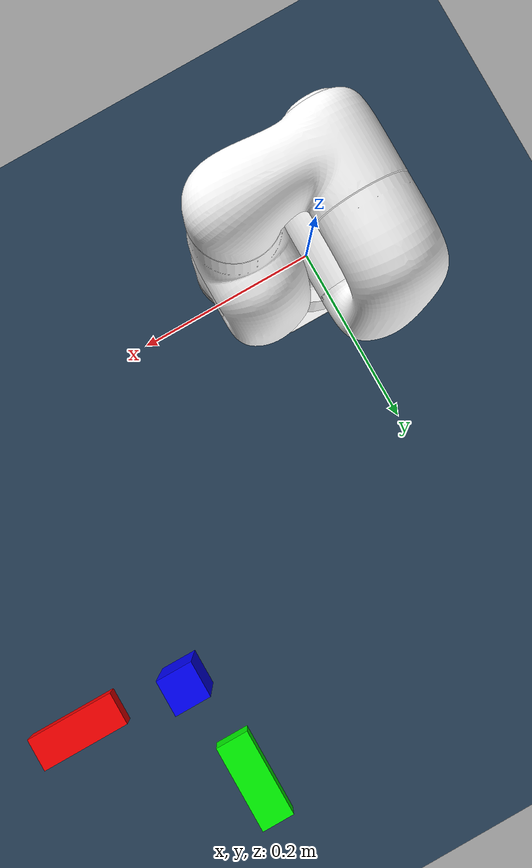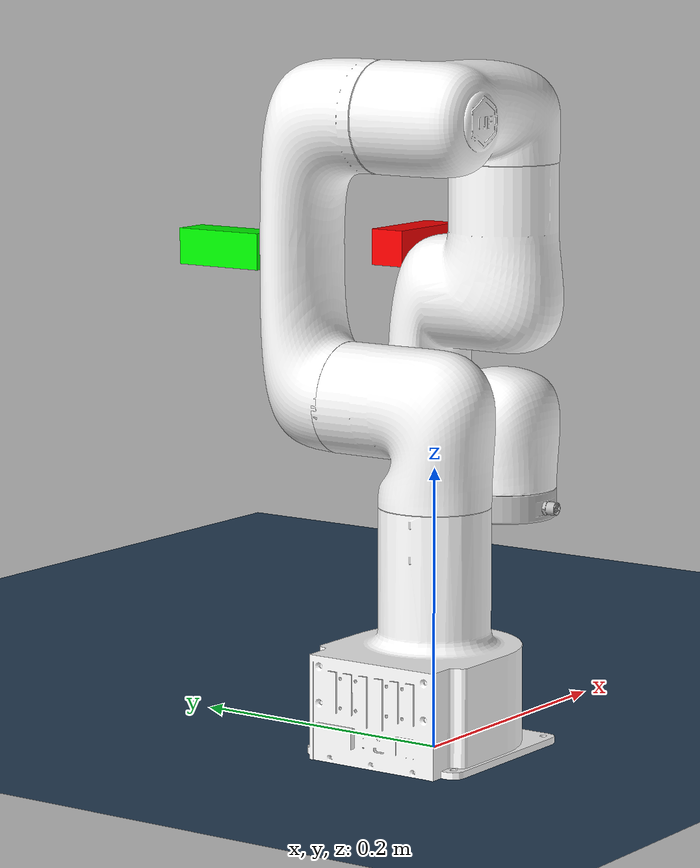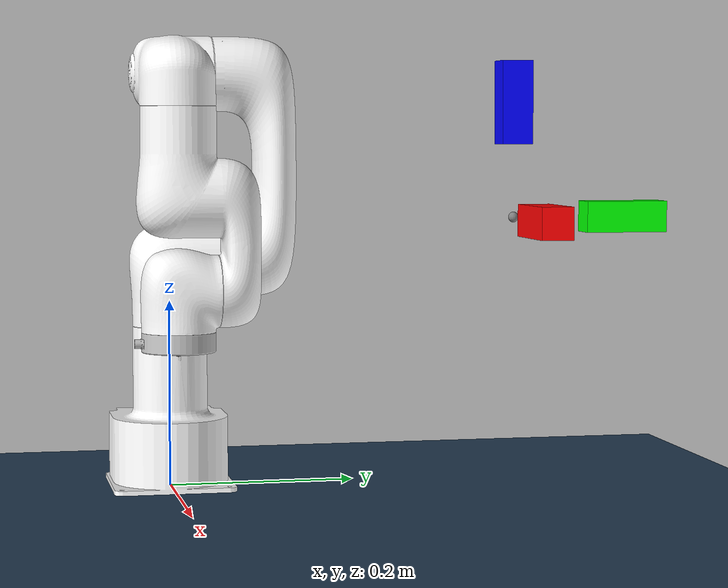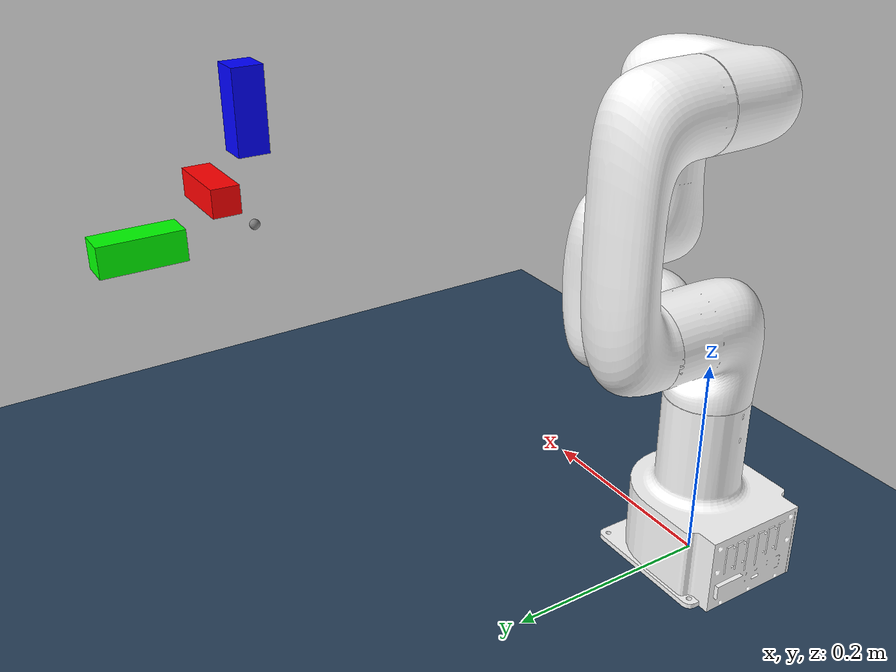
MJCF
<mujoco model="ufactory_lite6">
  <compiler angle="radian" meshdir="../mujoco_menagerie/ufactory_lite6/assets" autolimits="true"/>

  <option integrator="implicitfast"/>

  <default>
    <default class="lite6">
      <geom type="mesh"/>
      <joint axis="0 0 1" damping="1" armature="0.1"/>
      <general gaintype="fixed" biastype="affine" gainprm="2000" biasprm="0 -2000 -200"/>
      <default class="size1">
        <general forcerange="-50 50"/>
      </default>
      <default class="size2">
        <general forcerange="-32 32"/>
      </default>
      <default class="size3">
        <general forcerange="-20 20"/>
      </default>
      <default class="visual">
        <geom contype="0" conaffinity="0" group="2" material="white"/>
        <default class="target">
          <geom type="box" size=".015"/>
        </default>
      </default>
      <default class="collision">
        <geom group="3" mass="0" density="0"/>
      </default>
      <!-- This line causes sites to be in group 4 by default, making them unseen when site frame and label visualisations are turned on -->
    </default>
  </default>

  <asset>
    <material name="white" rgba="1 1 1 1"/>
    <material name="silver" rgba=".753 .753 .753 1"/>

    <mesh file="visual/link_base.stl"/>
    <mesh file="visual/link1.stl"/>
    <mesh file="visual/link2.stl"/>
    <mesh file="visual/link3.stl"/>
    <mesh file="visual/link4.stl"/>
    <mesh file="visual/link5.stl"/>
    <mesh file="visual/link6.stl"/>
    <mesh name="link_base_c" file="collision/link_base.stl"/>
    <mesh name="link1_c" file="collision/link1.stl"/>
    <mesh name="link2_c" file="collision/link2.stl"/>
    <mesh name="link3_c" file="collision/link3.stl"/>
    <mesh name="link4_c" file="collision/link4.stl"/>
    <mesh name="link5_c" file="collision/link5.stl"/>
    <mesh name="link6_c" file="collision/link6.stl"/>
  </asset>

  <visual>
    <headlight diffuse="0.6 0.6 0.6" ambient="0.3 0.3 0.3" specular="0 0 0"/>
    <rgba haze="0.15 0.25 0.35 1"/>
    <global azimuth="120" elevation="-20"/>
  </visual>

  <asset>
    <texture type="skybox" builtin="gradient" rgb1="0.3 0.5 0.7" rgb2="0 0 0" width="512" height="3072"/>
    <texture type="2d" name="groundplane" builtin="checker" mark="edge" rgb1="0.2 0.3 0.4" rgb2="0.1 0.2 0.3"
      markrgb="0.8 0.8 0.8" width="300" height="300"/>
    <material name="groundplane" texture="groundplane" texuniform="true" texrepeat="5 5" reflectance="0.2"/>
  </asset>

  <worldbody>
    <!-- Scene objects for visualisation -->
    <light pos="0 0 1.5" dir="0 0 -1" directional="true"/>
    <geom name="floor" size="0 0 0.05" type="plane" material="groundplane"/>

    <body name="link_base" childclass="lite6">
      <inertial pos="-0.00829545 3.26357e-05 0.0631195" mass="1.65394" diaginertia="0 0 0"/>
      <geom class="visual" mesh="link_base"/>
      <geom class="collision" mesh="link_base_c"/>
      <body name="link1" pos="0 0 0.2435">
        <inertial pos="-0.00036 0.04195 -0.0025" quat="0.608059 0.792349 -0.0438707 0.0228718" mass="1.411"
          diaginertia="0.00145276 0.00135275 0.000853355"/>
        <joint name="joint1" range="-6.28319 6.28319"/>
        <geom class="visual" mesh="link1"/>
        <geom class="collision" mesh="link1_c"/>
        <body name="link2" quat="-1 1 1 1">
          <inertial pos="0.179 0 0.0584" quat="0.417561 0.571619 0.569585 0.417693" mass="1.34"
            diaginertia="0.00560971 0.0052152 0.00122018"/>
          <joint name="joint2" range="-2.61799 2.61799"/>
          <geom class="visual" mesh="link2"/>
          <geom class="collision" mesh="link2_c"/>
          <body name="link3" pos="0.2002 0 0" quat="-2.59734e-06 -0.707105 -0.707108 -2.59735e-06">
            <inertial pos="0.072 -0.0357 -0.001" quat="0.128259 0.662963 -0.167256 0.71837" mass="0.953"
              diaginertia="0.0018521 0.00175546 0.000703807"/>
            <joint name="joint3" range="-0.061087 5.23599"/>
            <geom class="visual" mesh="link3"/>
            <geom class="collision" mesh="link3_c"/>
            <body name="link4" pos="0.087 -0.22761 0" quat="0.707105 0.707108 0 0">
              <inertial pos="-0.002 -0.0285 -0.0813" quat="0.975248 0.22109 0.00203498 -0.00262178" mass="1.284"
                diaginertia="0.00370503 0.00349091 0.00109586"/>
              <joint name="joint4" range="-6.28319 6.28319"/>
              <geom class="visual" mesh="link4"/>
              <geom class="collision" mesh="link4_c"/>
              <body name="link5" quat="1 1 0 0">
                <inertial pos="0 0.01 0.0019" quat="0.71423 0.696388 -0.0531933 0.0456997" mass="0.804"
                  diaginertia="0.000567553 0.000529266 0.000507681"/>
                <joint name="joint5" range="-2.1642 2.1642"/>
                <geom class="visual" mesh="link5"/>
                <geom class="collision" mesh="link5_c"/>
                <body name="link6" pos="0 0.0625 0" quat="1 -1 0 0">
                  <inertial pos="0 -0.00194 -0.0102" quat="-0.0376023 0.704057 0.0446838 0.707738" mass="0.13"
                    diaginertia="0.000148148 8.57757e-05 7.71412e-05"/>
                  <joint name="joint6" range="-6.28319 6.28319"/>
                  <geom class="visual" mesh="link6" material="silver"/>
                  <geom class="collision" mesh="link6_c"/>
                  <!-- Attachment site site -->
                  <site name="attachment_site"/>
                </body>
              </body>
            </body>
          </body>
        </body>
      </body>
    </body>

    <!-- Free floating target body to visualise target/goal pose, with rectangular prism ends for distinction-->
    <body name="target" pos=".3 .3 .3" quat="1 0 0 0" mocap="true">
      <site name="target" group="2"/>
      <geom class="target" fromto=".07 0 0 .15 0 0" rgba="1 0 0 1"/>
      <geom class="target" fromto="0 .07 0 0 .15 0" rgba="0 1 0 1"/>
      <geom class="target" fromto="0 0 .07 0 0 .15" rgba="0 0 1 1"/>
    </body>
  </worldbody>

  <actuator>
    <general joint="joint1" class="size1" ctrlrange="-6.28319 6.28319"/>
    <general joint="joint2" class="size1" ctrlrange="-2.61799 2.61799"/>
    <general joint="joint3" class="size2" ctrlrange="-0.061087 5.23599"/>
    <general joint="joint4" class="size2" ctrlrange="-6.28319 6.28319"/>
    <general joint="joint5" class="size2" ctrlrange="-2.1642 2.1642"/>
    <general joint="joint6" class="size3" ctrlrange="-6.28319 6.28319"/>
  </actuator>

  <keyframe>
    <key name="home" qpos="0 0 1.57 0 1.57 0" ctrl="0 0 1.57 0 1.57 0"/>
    <key name="faceout" qpos="1.546 0.541 1.49  2.961 0.596 0.203" ctrl="1.546 0.541 1.49  2.961 0.596 0.203"/>
  </keyframe>
</mujoco>
